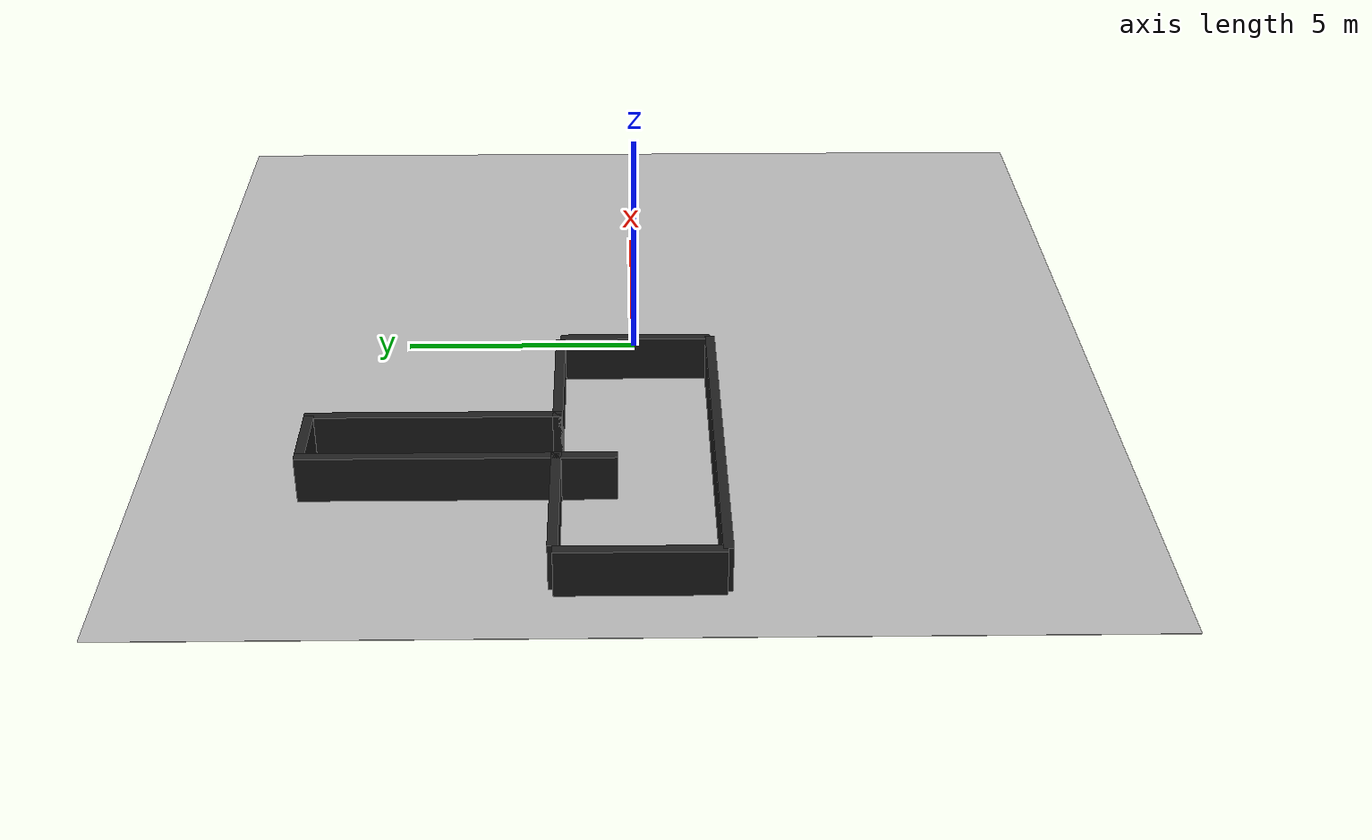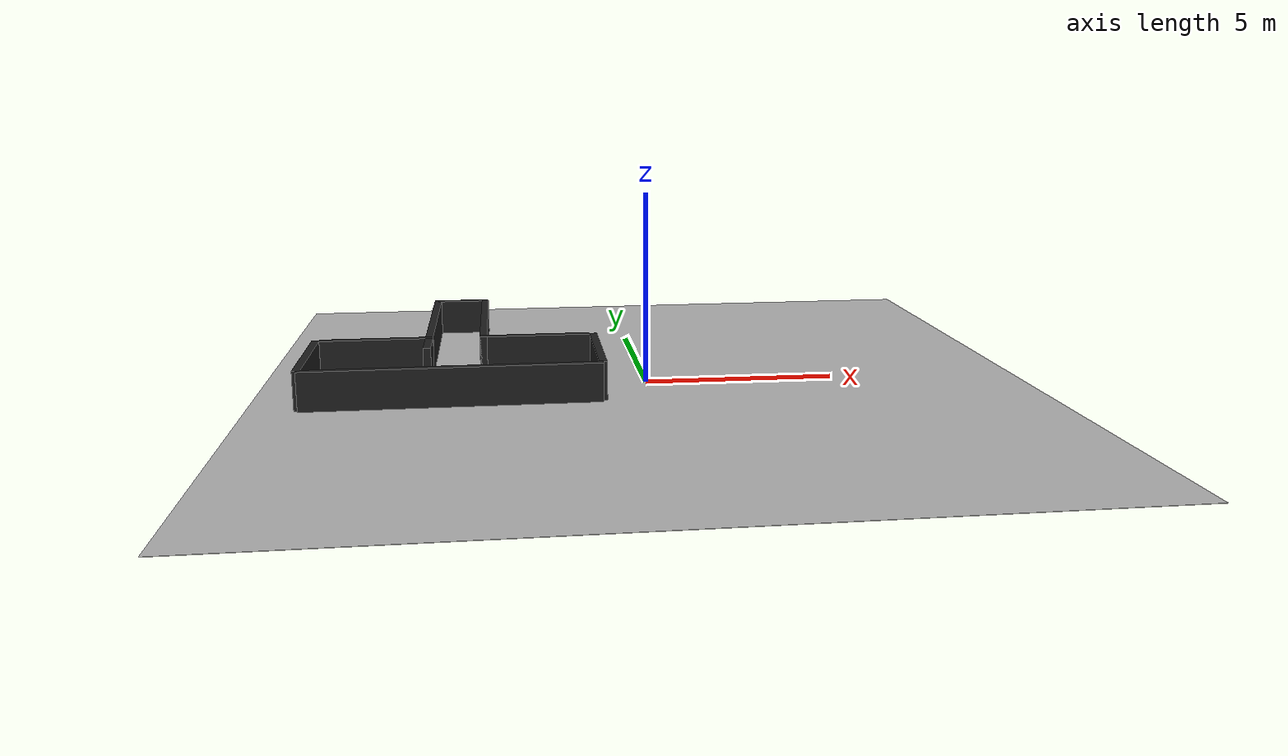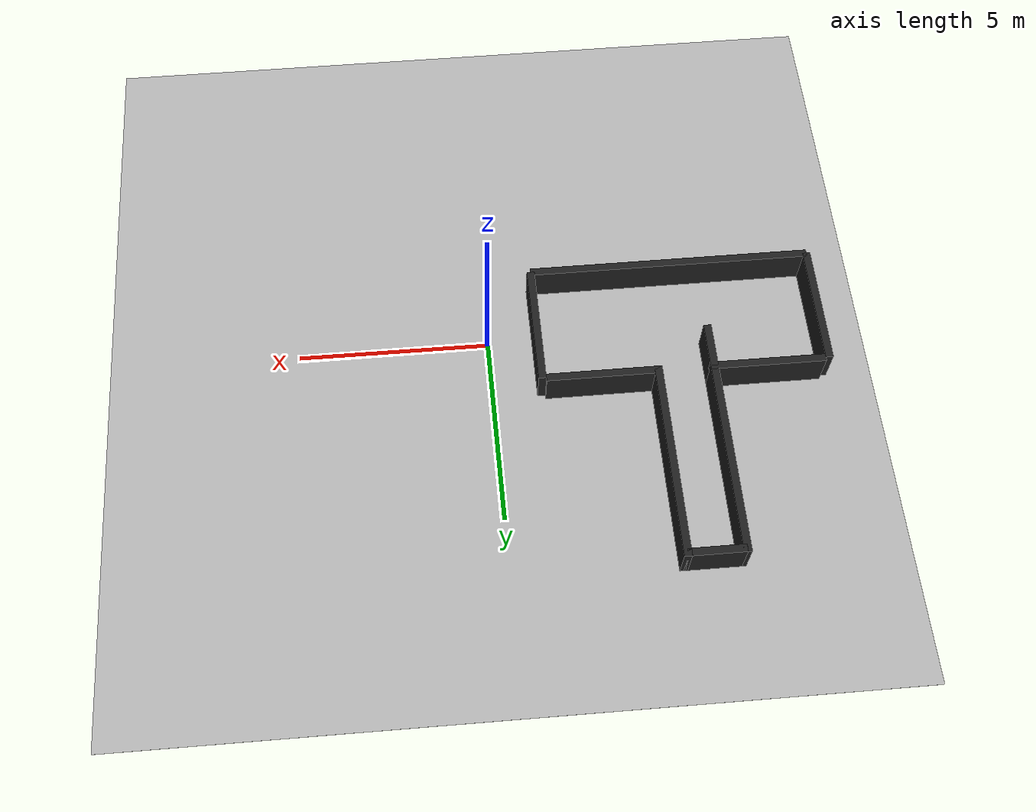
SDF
<?xml version="1.0" ?>
<sdf version="1.6">
  <world name="playground">

    <!--############### from small_city.world ###############-->
    <gui>
      <camera name="user_camera">
        <pose>0 0 30 0 1.57 0</pose>
      </camera>
    </gui>

    <scene>
      <grid>false</grid>
      <origin_visual>false</origin_visual>
      <ambient>0.85 0.85 0.85 1</ambient>
      <sky/>
      <background>0.35 0.35 0.35 1.0</background>
    </scene>

    <physics name='default_physics' default='0' type='ode'>
      <max_step_size>0.005</max_step_size>
      <real_time_factor>1</real_time_factor>
      <real_time_update_rate>200</real_time_update_rate>
    </physics>

    <light type="directional" name="sun">
      <pose>0 0 1000 0 0 0</pose>
      <cast_shadows>false</cast_shadows>
      <diffuse>0.8 0.8 0.8 1</diffuse>
      <specular>0.5 0.5 0.5 1</specular>
      <attenuation>
        <range>1000</range>
        <constant>0.9</constant>
        <linear>0.01</linear>
        <quadratic>0.001</quadratic>
      </attenuation>
      <direction>-0.5 0.1 -0.4</direction>
    </light>

    <model name="ground_plane">
      <static>true</static>
      <link name="link">
        <collision name="collision">
          <geometry>
            <plane>
              <normal>0 0 1</normal>
              <size>100 100</size>
            </plane>
          </geometry>
          <surface>
            <friction>
              <ode>
                <mu>10000</mu>
                <mu2>5000</mu2>
              </ode>
            </friction>
          </surface>
        </collision>
      </link>
    </model>

    <!-- Asphalt base (thin layer, grey) -->
    <model name="asphalt_base">
      <static>true</static>
      <link name="asphalt_link">
        <pose>0 0 -0.01 0 0 0</pose>
        <visual name="asphalt_visual">
          <geometry>
            <box>
              <size>20 20 0.01</size>
            </box>
          </geometry>
          <material>
            <ambient>0.7 0.7 0.7 1</ambient>
            <diffuse>0.7 0.7 0.7 1</diffuse>
          </material>
        </visual>
      </link>
    </model>

    <model name="room_walls">
      <static>true</static>

      <!-- obrót całości o -90° (usuń lub ustaw 0, jeśli nie chcesz obrotu) -->
      <pose>-5 1.5 0 0 0 -1.57079632679</pose>

      <link name="walls_link">
        <!-- stałe: thickness=0.2, height=1.0, corridor_width=1.25 -->
        <!-- z = 0.5 bo ściana ma 1.0 m wysokości -->

        <!-- KORYTARZ: górna ściana (wewn. krawędź y=+0.625 => środek y=+0.725) -->
        <visual name="corridor_top_visual">
          <pose>-2.6 0.725 0.5 0 0 0</pose>
          <geometry><box><size>5.2 0.2 1.0</size></box></geometry>
          <material><script><name>Gazebo/Black</name></script></material>
        </visual>
        <collision name="corridor_top_collision">
          <pose>-2.6 0.725 0.5 0 0 0</pose>
          <geometry><box><size>5.2 0.2 1.0</size></box></geometry>
        </collision>

        <!-- KORYTARZ: dolna ściana (wewn. krawędź y=-0.625 => środek y=-0.725) -->
        <visual name="corridor_bottom_visual">
          <pose>-2.6 -0.725 0.5 0 0 0</pose>
          <geometry><box><size>5.2 0.2 1.0</size></box></geometry>
          <material><script><name>Gazebo/Black</name></script></material>
        </visual>
        <collision name="corridor_bottom_collision">
          <pose>-2.6 -0.725 0.5 0 0 0</pose>
          <geometry><box><size>5.2 0.2 1.0</size></box></geometry>
        </collision>

        <!-- KORYTARZ: lewa ścianka zamykająca (wewn. krawędź x=-5 => środek x=-5.1) -->
        <visual name="corridor_left_cap_visual">
          <pose>-5.1 0 0.5 0 0 0</pose>
          <geometry><box><size>0.2 1.45 1.0</size></box></geometry>
          <material><script><name>Gazebo/Black</name></script></material>
        </visual>
        <collision name="corridor_left_cap_collision">
          <pose>-5.1 0 0.5 0 0 0</pose>
          <geometry><box><size>0.2 1.45 1.0</size></box></geometry>
        </collision>

        <!-- POKÓJ: górna ściana (wewn. y=+3.625 => środek y=+3.725) -->
        <visual name="room_top_visual">
          <pose>1.5 3.725 0.5 0 0 0</pose>
          <geometry><box><size>3.2 0.2 1.0</size></box></geometry>
          <material><script><name>Gazebo/Black</name></script></material>
        </visual>
        <collision name="room_top_collision">
          <pose>1.5 3.725 0.5 0 0 0</pose>
          <geometry><box><size>3.2 0.2 1.0</size></box></geometry>
        </collision>

        <!-- POKÓJ: dolna ściana (wewn. y=-3.625 => środek y=-3.725) -->
        <visual name="room_bottom_visual">
          <pose>1.5 -3.725 0.5 0 0 0</pose>
          <geometry><box><size>3.2 0.2 1.0</size></box></geometry>
          <material><script><name>Gazebo/Black</name></script></material>
        </visual>
        <collision name="room_bottom_collision">
          <pose>1.5 -3.725 0.5 0 0 0</pose>
          <geometry><box><size>3.2 0.2 1.0</size></box></geometry>
        </collision>

        <!-- POKÓJ: prawa ściana (wewn. x=3 => środek x=3.1), wysokość 7.25 -->
        <visual name="room_right_visual">
          <pose>3.1 0 0.5 0 0 0</pose>
          <geometry><box><size>0.2 7.45 1.0</size></box></geometry>
          <material><script><name>Gazebo/Black</name></script></material>
        </visual>
        <collision name="room_right_collision">
          <pose>3.1 0 0.5 0 0 0</pose>
          <geometry><box><size>0.2 7.45 1.0</size></box></geometry>
        </collision>

        <!-- POKÓJ: lewa ściana - segment górny (nad wejściem), długość 3m -->
        <visual name="room_left_upper_visual">
          <pose>-0.1 2.125 0.5 0 0 0</pose>
          <geometry><box><size>0.2 3.0 1.0</size></box></geometry>
          <material><script><name>Gazebo/Black</name></script></material>
        </visual>
        <collision name="room_left_upper_collision">
          <pose>-0.1 2.125 0.5 0 0 0</pose>
          <geometry><box><size>0.2 3.0 1.0</size></box></geometry>
        </collision>

        <!-- POKÓJ: lewa ściana - segment dolny (pod wejściem), długość 3m -->
        <visual name="room_left_lower_visual">
          <pose>-0.1 -2.125 0.5 0 0 0</pose>
          <geometry><box><size>0.2 3.0 1.0</size></box></geometry>
          <material><script><name>Gazebo/Black</name></script></material>
        </visual>
        <collision name="room_left_lower_collision">
          <pose>-0.1 -2.125 0.5 0 0 0</pose>
          <geometry><box><size>0.2 3.0 1.0</size></box></geometry>
        </collision>

        <!-- WYSTĘP 1m (wewnętrzna ścianka przy dolnej krawędzi wejścia) -->
        <visual name="lip_1m_visual">
          <pose>0.5 -0.725 0.5 0 0 0</pose>
          <geometry><box><size>1.2 0.2 1.0</size></box></geometry>
          <material><script><name>Gazebo/Black</name></script></material>
        </visual>
        <collision name="lip_1m_collision">
          <pose>0.5 -0.725 0.5 0 0 0</pose>
          <geometry><box><size>1.2 0.2 1.0</size></box></geometry>
        </collision>

      </link>
    </model>

  </world>
</sdf>
